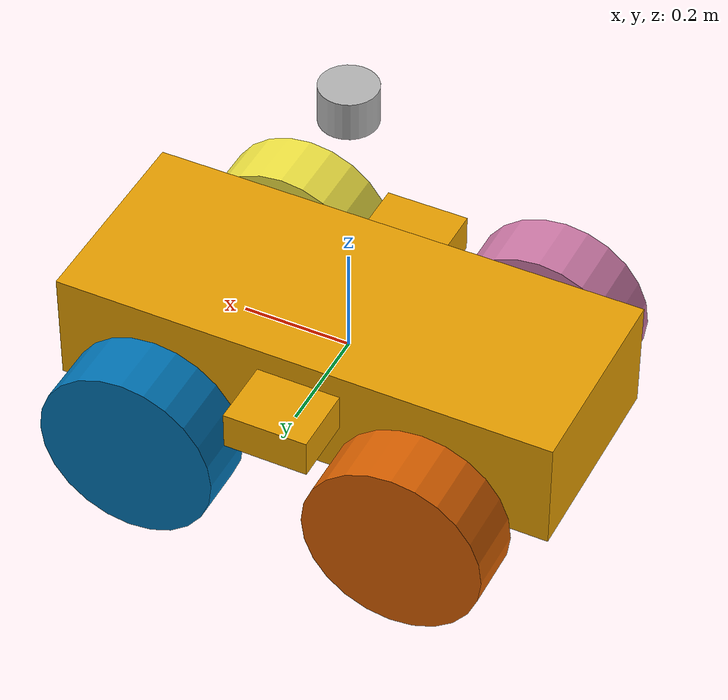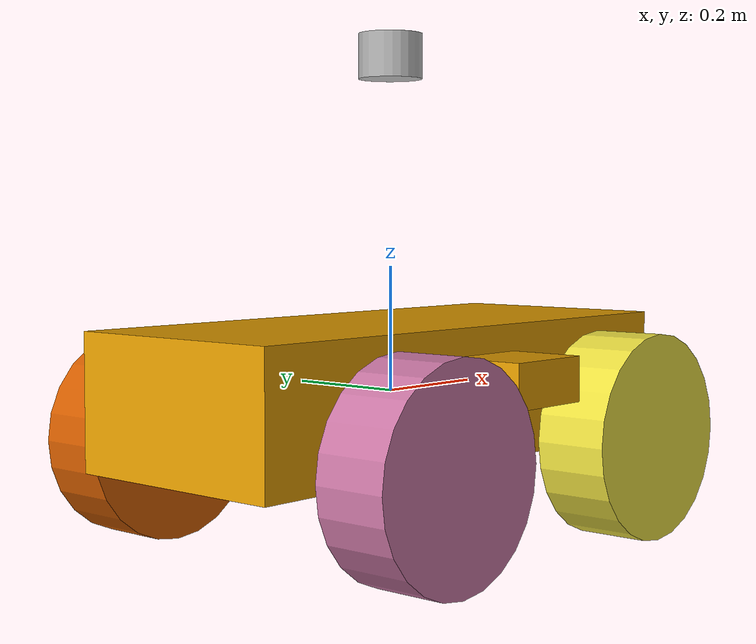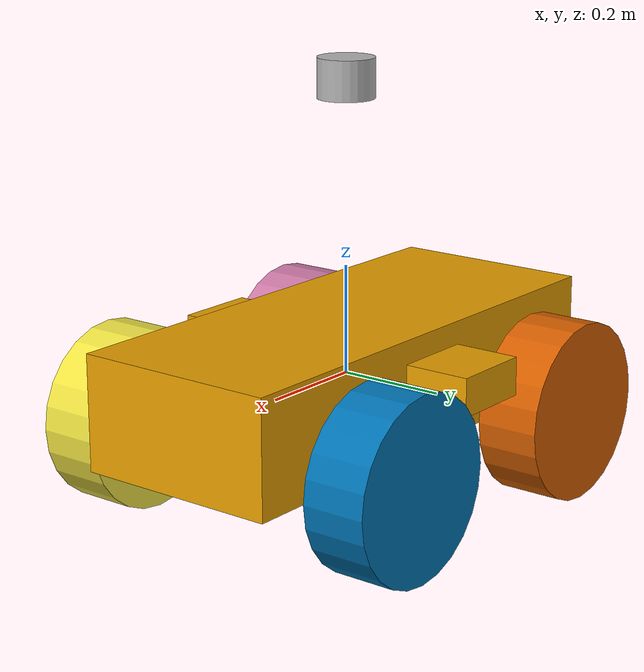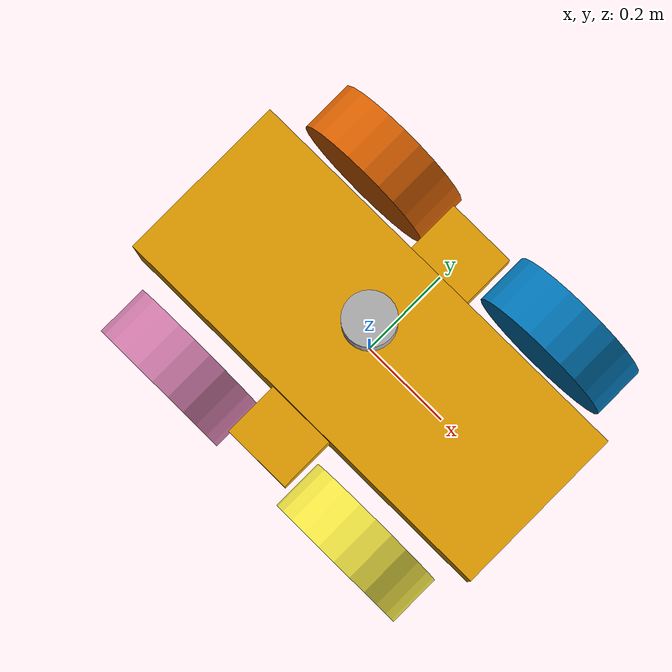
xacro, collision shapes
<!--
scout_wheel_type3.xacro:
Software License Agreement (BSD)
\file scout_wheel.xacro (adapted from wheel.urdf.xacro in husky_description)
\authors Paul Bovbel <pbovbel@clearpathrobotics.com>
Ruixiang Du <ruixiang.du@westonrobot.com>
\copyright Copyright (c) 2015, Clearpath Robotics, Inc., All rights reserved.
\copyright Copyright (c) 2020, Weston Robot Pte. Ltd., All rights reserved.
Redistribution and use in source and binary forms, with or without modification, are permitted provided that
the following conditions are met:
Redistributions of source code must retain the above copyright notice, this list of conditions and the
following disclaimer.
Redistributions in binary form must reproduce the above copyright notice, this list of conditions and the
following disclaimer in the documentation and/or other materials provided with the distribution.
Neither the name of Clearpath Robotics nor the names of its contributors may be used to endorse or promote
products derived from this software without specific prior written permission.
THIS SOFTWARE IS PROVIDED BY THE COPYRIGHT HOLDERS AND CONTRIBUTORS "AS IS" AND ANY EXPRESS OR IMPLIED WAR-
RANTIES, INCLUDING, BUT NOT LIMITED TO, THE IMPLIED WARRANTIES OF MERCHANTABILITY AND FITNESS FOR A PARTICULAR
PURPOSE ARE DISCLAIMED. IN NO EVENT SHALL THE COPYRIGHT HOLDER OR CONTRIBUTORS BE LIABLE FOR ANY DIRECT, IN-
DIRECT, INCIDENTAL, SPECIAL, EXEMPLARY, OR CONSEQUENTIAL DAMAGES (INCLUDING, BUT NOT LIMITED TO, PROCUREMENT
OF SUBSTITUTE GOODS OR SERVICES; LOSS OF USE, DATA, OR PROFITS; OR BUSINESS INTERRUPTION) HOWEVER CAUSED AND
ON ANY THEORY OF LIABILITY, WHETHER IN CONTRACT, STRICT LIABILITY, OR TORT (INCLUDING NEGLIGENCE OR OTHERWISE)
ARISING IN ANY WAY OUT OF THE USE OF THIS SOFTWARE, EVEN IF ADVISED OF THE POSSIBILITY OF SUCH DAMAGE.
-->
<?xml version="1.0"?>

<robot xmlns:xacro="http://ros.org/wiki/xacro" name="scout">

    <xacro:arg name="robot_namespace" default="/" />
    <xacro:arg name="is_sim" default="true" />
    <xacro:arg name="laser_enabled" default="true" />

    <xacro:include filename="$(find scout_description)/urdf/scout_wheel_type1.xacro" />
    <xacro:include filename="$(find scout_description)/urdf/scout_wheel_type2.xacro" />
    <xacro:include filename="$(find scout_description)/urdf/scout_wheel_type3.xacro" />

    <!-- Variables -->
    <xacro:property name="M_PI" value="3.14159"/>

    <!-- Vehicle Geometries -->
    <xacro:property name="base_x_size" value="0.9250000" />
    <xacro:property name="base_y_size" value="0.380000" />
    <xacro:property name="base_z_size" value="0.210000" />

    <xacro:property name="wheelbase" value="0.498" />
    <xacro:property name="track" value="0.58306" />
    <xacro:property name="wheel_vertical_offset" value="-0.0702" />

    <xacro:property name="wheel_length" value="1.1653e-01" />
    <xacro:property name="wheel_radius" value="1.6459e-01" />

    <!-- Base link -->
    <link name="base_link">
        <visual>
            <origin xyz="0 0 0" rpy="0 0 0" />
            <geometry>
                <mesh filename="file://$(find scout_description)/meshes/base_link.dae" />
            </geometry>
        </visual>
        <collision>
            <origin xyz="0 0 0.008" rpy="0 0 0" />
            <geometry>
                <box size="${base_x_size} ${base_y_size} ${base_z_size}"/>
            </geometry>
        </collision>
        <collision>
            <origin xyz="0 0 ${base_z_size/6}" rpy="0 0 0" />
            <geometry>
                <box size="${base_x_size/6} ${base_y_size*1.65} ${base_z_size/3}"/>
            </geometry>
        </collision>
    </link>

    <link name="base_footprint"/>

    <joint name="base_footprint_joint" type="fixed">
        <origin xyz="0 0 ${wheel_vertical_offset - wheel_radius}" rpy="0 0 0" />
        <parent link="base_link" />
        <child link="base_footprint" />
    </joint>

    <link name="inertial_link">
        <inertial>
            <mass value="40" />
            <origin xyz="0.0 0.0 0.0" />
            <inertia ixx="2.288641" ixy="0" ixz="0" iyy="5.103976" iyz="0" izz="3.431465" />
        </inertial>
    </link>

    <joint name="inertial_joint" type="fixed">
        <origin xyz="0 0 0" rpy="0 0 0" />
        <parent link="base_link" />
        <child link="inertial_link" />
    </joint>

    <xacro:unless value="$(arg is_sim)">
        <xacro:scout_wheel_type1 wheel_prefix="front_right">
            <origin xyz="${wheelbase/2} ${-track/2} ${wheel_vertical_offset}" rpy="3.14 0 0" />
        </xacro:scout_wheel_type1>
        <xacro:scout_wheel_type2 wheel_prefix="front_left">
            <origin xyz="${wheelbase/2} ${track/2} ${wheel_vertical_offset}" rpy="0 0 0" />
        </xacro:scout_wheel_type2>
        <xacro:scout_wheel_type1 wheel_prefix="rear_left">
            <origin xyz="${-wheelbase/2} ${track/2} ${wheel_vertical_offset}" rpy="0 0 0" />
        </xacro:scout_wheel_type1>
        <xacro:scout_wheel_type2 wheel_prefix="rear_right">
            <origin xyz="${-wheelbase/2} ${-track/2} ${wheel_vertical_offset}" rpy="3.14 0 0" />
        </xacro:scout_wheel_type2>
    </xacro:unless>
    <xacro:if value="$(arg is_sim)">
        <xacro:scout_wheel_type3 wheel_prefix="front_right">
            <origin xyz="${wheelbase/2} ${-track/2} ${wheel_vertical_offset}" rpy="0 0 0" />
        </xacro:scout_wheel_type3>
        <xacro:scout_wheel_type3 wheel_prefix="front_left">
            <origin xyz="${wheelbase/2} ${track/2} ${wheel_vertical_offset}" rpy="0 0 0" />
        </xacro:scout_wheel_type3>
        <xacro:scout_wheel_type3 wheel_prefix="rear_left">
            <origin xyz="${-wheelbase/2} ${track/2} ${wheel_vertical_offset}" rpy="0 0 0" />
        </xacro:scout_wheel_type3>
        <xacro:scout_wheel_type3 wheel_prefix="rear_right">
            <origin xyz="${-wheelbase/2} ${-track/2} ${wheel_vertical_offset}" rpy="0 0 0" />
        </xacro:scout_wheel_type3>
    </xacro:if>

<xacro:include filename="$(find velodyne_description)/urdf/VLP-16.urdf.xacro" />
<xacro:VLP-16 parent="vlp16_link" name="vlp16" tf_prefix="" topic="/velodyne_points" organize_cloud="false" hz="10" lasers="24" samples="1000" collision_range="0.3" min_range="0.1" max_range="10.0" noise="0.008" min_angle="-${M_PI}" max_angle="${M_PI}" gpu="true">
    <origin xyz="0.0 0.0 0.0" rpy="0 0 0"/>
</xacro:VLP-16>

<!-- Mount for VLP-16 LiDAR -->
<joint name="vlp16_mount_joint" type="fixed">
    <origin xyz="0.0 0.0 0.5" rpy="0 0 0"/> <!-- Adjust xyz and rpy as needed -->
    <parent link="base_link"/> <!-- Or another link, if more appropriate -->
    <child link="vlp16_link"/>
</joint>

<link name="vlp16_link">
    <visual>
        <origin xyz="0 0 0" rpy="0 0 0"/>
        <geometry>
            <mesh filename="file://$(find velodyne_description)/meshes/VLP16_scan.dae" />
        </geometry>
    </visual>
</link>

    <xacro:if value="$(arg is_sim)">
        <xacro:include filename="$(find scout_description)/urdf/scout_gazebo.xacro" />
        <xacro:gazebo_h2 prefix=""/>
    </xacro:if>

</robot>

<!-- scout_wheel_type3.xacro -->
<robot xmlns:xacro="http://ros.org/wiki/xacro" name="scout_wheel">

    <xacro:macro name="scout_wheel_type3" params="wheel_prefix *joint_pose">
        <link name="${wheel_prefix}_wheel_link">
            <inertial>
                <mass value="3" />
                <origin xyz="0 0 0" />
                <inertia ixx="0.7171" ixy="0" ixz="0" iyy="0.1361" iyz="0" izz="0.7171" />
            </inertial>
            <visual>
                <origin xyz="0 0 0" rpy="0 0 0" />
                <geometry>
                    <mesh filename="file://$(find scout_description)/meshes/wheel_type1.dae" />
                </geometry>
            </visual>
            <collision>
                <origin xyz="0 0 0" rpy="${M_PI/2} 0 0" />
                <geometry>
                    <cylinder length="${wheel_length}" radius="${wheel_radius}" />
                </geometry>
            </collision>
        </link>

        <joint name="${wheel_prefix}_wheel_joint" type="continuous">
            <parent link="base_link"/>
            <child link="${wheel_prefix}_wheel_link"/>
            <xacro:insert_block name="joint_pose"/>
            <axis xyz="0 1 0" rpy="0 0 0" />
        </joint>
    </xacro:macro>

</robot>

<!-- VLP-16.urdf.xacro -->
<robot xmlns:xacro="http://www.ros.org/wiki/xacro" name="VLP-16">
  <xacro:property name="M_PI" value="3.1415926535897931" />
  <xacro:macro name="VLP-16" params="*origin parent:=base_link name:=velodyne tf_prefix:='' topic:=/velodyne_points organize_cloud:=false hz:=10 lasers:=16 samples:=1875 collision_range:=0.3 min_range:=0.9 max_range:=130.0 noise:=0.008 min_angle:=-${M_PI} max_angle:=${M_PI} gpu:=false">

    <joint name="${name}_base_mount_joint" type="fixed">
      <xacro:insert_block name="origin" />
      <parent link="${parent}"/>
      <child link="${name}_base_link"/>
    </joint>

    <link name="${name}_base_link">
      <inertial>
        <mass value="0.83"/>
        <origin xyz="0 0 0.03585"/>
        <inertia ixx="${(0.83 * (3.0*0.0516*0.0516 + 0.0717*0.0717)) / 12.0}" ixy="0" ixz="0"
          iyy="${(0.83 * (3.0*0.0516*0.0516 + 0.0717*0.0717)) / 12.0}" iyz="0"
          izz="${0.5 * 0.83 * (0.0516*0.0516)}"/>
      </inertial>
      <visual>
        <geometry>
          <mesh filename="package://velodyne_description/meshes/VLP16_base_1.dae" />
        </geometry>
      </visual>
      <visual>
        <geometry>
          <mesh filename="package://velodyne_description/meshes/VLP16_base_2.dae" />
        </geometry>
      </visual>
      <collision>
        <origin rpy="0 0 0" xyz="0 0 0.03585"/>
        <geometry>
          <cylinder radius="0.0516" length="0.0717"/>
        </geometry>
      </collision>
    </link>

    <joint name="${name}_base_scan_joint" type="fixed" >
      <origin xyz="0 0 0.0377" rpy="0 0 0" />
      <parent link="${name}_base_link" />
      <child link="${name}"/>
    </joint>

    <link name="${name}">
      <inertial>
        <mass value="0.01"/>
        <origin xyz="0 0 0"/>
        <inertia ixx="1e-7" ixy="0" ixz="0" iyy="1e-7" iyz="0" izz="1e-7"/>
      </inertial>
      <visual>
        <origin xyz="0 0 -0.0377" />
        <geometry>
          <mesh filename="package://velodyne_description/meshes/VLP16_scan.dae" />
        </geometry>
      </visual>
      <collision>
        <geometry>
          <sphere radius="0"/>
        </geometry>
      </collision>
    </link>

    <!-- Gazebo requires the velodyne_gazebo_plugins package -->
    <gazebo reference="${name}">
      <xacro:if value="${gpu}">
        <sensor type="gpu_ray" name="${name}-VLP16">
          <pose>0 0 0 0 0 0</pose>
          <visualize>false</visualize>
          <update_rate>${hz}</update_rate>
          <ray>
            <scan>
              <horizontal>
                <samples>${samples}</samples>
                <resolution>1</resolution>
                <min_angle>${min_angle}</min_angle>
                <max_angle>${max_angle}</max_angle>
              </horizontal>
              <vertical>
                <samples>${lasers}</samples>
                <resolution>1</resolution>
                <min_angle>-${45.0*M_PI/180.0}</min_angle>
                <max_angle> ${15.0*M_PI/180.0}</max_angle>
              </vertical>
            </scan>
            <range>
              <min>${collision_range}</min>
              <max>${max_range+1}</max>
              <resolution>0.001</resolution>
            </range>
            <noise>
              <type>gaussian</type>
              <mean>0.0</mean>
              <stddev>0.0</stddev>
            </noise>
          </ray>
          <plugin name="gazebo_ros_laser_controller" filename="libgazebo_ros_velodyne_laser.so">
            <ros>
              <namespace>/${name}</namespace>
              <remapping>~/out:=${topic}</remapping>
            </ros>
            <tf_prefix>${tf_prefix}</tf_prefix>
            <frame_name>${name}</frame_name>
            <organize_cloud>${organize_cloud}</organize_cloud>
            <min_range>${min_range}</min_range>
            <max_range>${max_range}</max_range>
            <gaussian_noise>${noise}</gaussian_noise>
          </plugin>
        </sensor>
      </xacro:if>
      <xacro:unless value="${gpu}">
        <sensor type="ray" name="${name}-VLP16">
          <pose>0 0 0 0 0 0</pose>
          <visualize>false</visualize>
          <update_rate>${hz}</update_rate>
          <ray>
            <scan>
              <horizontal>
                <samples>${samples}</samples>
                <resolution>1</resolution>
                <min_angle>${min_angle}</min_angle>
                <max_angle>${max_angle}</max_angle>
              </horizontal>
              <vertical>
                <samples>${lasers}</samples>
                <resolution>1</resolution>
                <min_angle>-${15.0*M_PI/180.0}</min_angle>
                <max_angle> ${15.0*M_PI/180.0}</max_angle>
              </vertical>
            </scan>
            <range>
              <min>${collision_range}</min>
              <max>${max_range+1}</max>
              <resolution>0.001</resolution>
            </range>
            <noise>
              <type>gaussian</type>
              <mean>0.0</mean>
              <stddev>0.0</stddev>
            </noise>
          </ray>
          <plugin name="gazebo_ros_laser_controller" filename="libgazebo_ros_velodyne_laser.so">
            <ros>
              <namespace>/${name}</namespace>
              <remapping>~/out:=${topic}</remapping>
            </ros>
            <tf_prefix>${tf_prefix}</tf_prefix>
            <frame_name>${name}</frame_name>
            <organize_cloud>${organize_cloud}</organize_cloud>
            <min_range>${min_range}</min_range>
            <max_range>${max_range}</max_range>
            <gaussian_noise>${noise}</gaussian_noise>
          </plugin>
        </sensor>
      </xacro:unless>
    </gazebo>

  </xacro:macro>
</robot>

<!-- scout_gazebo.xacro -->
<robot xmlns:xacro="http://ros.org/wiki/xacro">

  <xacro:macro name="gazebo_h2" params="prefix">
    <link name="imu_link"/>
    <joint name="imu_joint" type="fixed">
      <origin xyz="0.19 0 0.149" rpy="0 0 0" />
      <parent link="base_link" />
      <child link="imu_link" />
    </joint>

    <gazebo reference="imu_link">
      <sensor name="imu_sensor" type="imu">
        <plugin filename="libgazebo_ros_imu_sensor.so" name="imu_plugin">
          <ros>
            <remapping>~/out:=imu/data</remapping>
          </ros>
          <initial_orientation_as_reference>false</initial_orientation_as_reference>
        </plugin>
        <always_on>true</always_on>
        <update_rate>100</update_rate>
        <visualize>true</visualize>
        <imu>
        <angular_velocity>
          <x>
            <noise type="gaussian">
                <mean>0.0</mean>
                <stddev>2e-4</stddev>
                <bias_mean>0.0000075</bias_mean>
                <bias_stddev>0.0000008</bias_stddev>
              </noise>
            </x>
            <y>
              <noise type="gaussian">
                <mean>0.0</mean>
                <stddev>2e-4</stddev>
                <bias_mean>0.0000075</bias_mean>
                <bias_stddev>0.0000008</bias_stddev>
              </noise>
            </y>
            <z>
              <noise type="gaussian">
                <mean>0.0</mean>
                <stddev>2e-4</stddev>
                <bias_mean>0.0000075</bias_mean>
                <bias_stddev>0.0000008</bias_stddev>
              </noise>
            </z>
          </angular_velocity>
          <linear_acceleration>
            <x>
              <noise type="gaussian">
                <mean>0.0</mean>
                <stddev>1.7e-2</stddev>
                <bias_mean>0.1</bias_mean>
                <bias_stddev>0.001</bias_stddev>
              </noise>
            </x>
            <y>
              <noise type="gaussian">
                <mean>0.0</mean>
                <stddev>1.7e-2</stddev>
                <bias_mean>0.1</bias_mean>
                <bias_stddev>0.001</bias_stddev>
              </noise>
            </y>
            <z>
              <noise type="gaussian">
                <mean>0.0</mean>
                <stddev>1.7e-2</stddev>
                <bias_mean>0.1</bias_mean>
                <bias_stddev>0.001</bias_stddev>
              </noise>
            </z>
          </linear_acceleration>
        </imu>
      </sensor>
    </gazebo>

    <xacro:if value="$(arg laser_enabled)">
      <gazebo reference="base_laser">
        <sensor name="lidar" type="ray">
          <always_on>true</always_on>
          <visualize>true</visualize>
          <update_rate>5</update_rate>
          <ray>
          <scan>
            <horizontal>
              <samples>720</samples>
              <resolution>1.000000</resolution>
              <min_angle>-2.35619</min_angle>
              <max_angle>2.35619</max_angle>
            </horizontal>
          </scan>
          <range>
            <min>0.1</min>
            <max>30</max>
            <resolution>0.01</resolution>
          </range>
          <noise>
            <type>gaussian</type>
            <mean>0.0</mean>
            <stddev>0.01</stddev>
          </noise>
          </ray>
            <plugin name="scan" filename="libgazebo_ros_ray_sensor.so">
              <ros>
                <namespace>$(arg robot_namespace)</namespace>
                <remapping>~/out:=scan</remapping>
              </ros>
                <output_type>sensor_msgs/LaserScan</output_type>
              <frame_name>base_laser</frame_name>
            </plugin>
        </sensor>
      </gazebo>
    </xacro:if>

    <gazebo>
      <plugin name="differential_drive_controller" filename="libgazebo_ros_diff_drive.so">
        <ros>
          <namespace>$(arg robot_namespace)</namespace>
        </ros>

        <num_wheel_pairs>2</num_wheel_pairs>
        <left_joint>front_left_wheel_joint</left_joint>
        <right_joint>front_right_wheel_joint</right_joint>
        <left_joint>rear_left_wheel_joint</left_joint>
        <right_joint>rear_right_wheel_joint</right_joint>

        <wheel_separation>0.498</wheel_separation>
        <wheel_separation>0.498</wheel_separation>
        <wheel_diameter>0.33</wheel_diameter>
        <wheel_diameter>0.33</wheel_diameter>

        <updateRate>20</updateRate>
        <max_wheel_torque>50</max_wheel_torque>
        <max_wheel_acceleration>1.5</max_wheel_acceleration>
        <odometry_topic>odom</odometry_topic>
        <odometry_frame>odom</odometry_frame>
        <robot_base_frame>base_link</robot_base_frame>
        <publish_odom>true</publish_odom>
        <publish_odom_tf>true</publish_odom_tf>
        <publish_wheel_tf>false</publish_wheel_tf>
        <odometry_frame>odom</odometry_frame>
      </plugin>
    </gazebo>

  </xacro:macro>
</robot>
